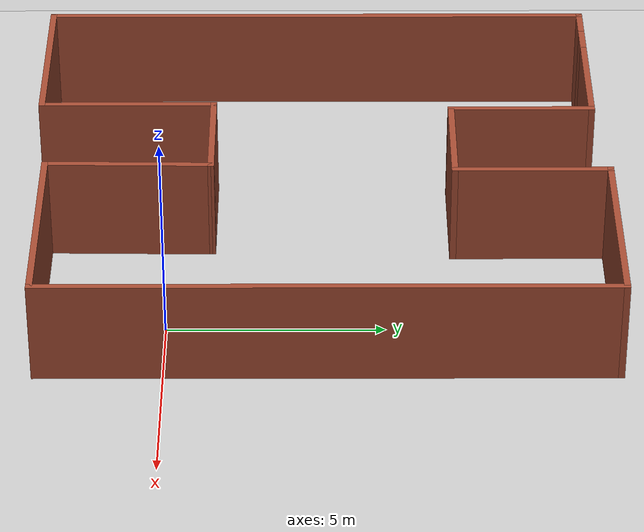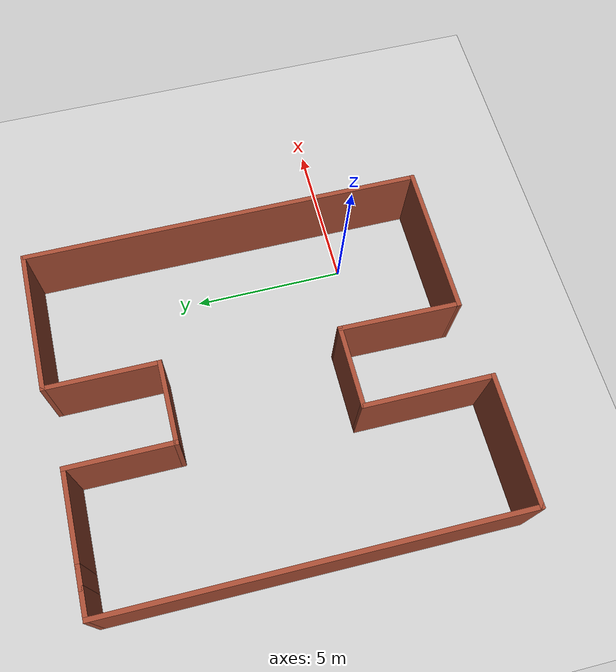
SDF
<sdf version="1.7">
 <world name="default">
  <light name="sun" type="directional">
   <pose>0 0 10 0 -0 0</pose>
   <diffuse>0.8 0.8 0.8 1</diffuse>
   <specular>0.2 0.2 0.2 1</specular>
   <attenuation>
    <range>1000</range>
    <constant>0.9</constant>
    <linear>0.01</linear>
    <quadratic>0.001</quadratic>
   </attenuation>
   <direction>-0.5 0.1 -0.9</direction>
   <spot><inner_angle>0</inner_angle><outer_angle>0</outer_angle><falloff>0</falloff></spot>
  </light>
  <model name="ground_plane">
   <static>1</static>
   <link name="link">
    <collision name="collision">
     <geometry><plane><normal>0 0 1</normal><size>100 100</size></plane></geometry>
     <surface>
      <contact><collide_bitmask>65535</collide_bitmask></contact>
      <friction><ode><mu>100</mu><mu2>50</mu2></ode></friction>
     </surface>
    </collision>
    <visual name="visual">
     <cast_shadows>0</cast_shadows>
     <geometry><plane><normal>0 0 1</normal><size>100 100</size></plane></geometry>
     <material>
      <script><uri>file://media/materials/scripts/gazebo.material</uri><name>Gazebo/Grey</name></script>
     </material>
    </visual>
   </link>
  </model>
  <gravity>0 0 -9.8</gravity>
  <magnetic_field>6e-06 2.3e-05 -4.2e-05</magnetic_field>
  <atmosphere type="adiabatic"/>
  <physics type="ode">
   <max_step_size>0.001</max_step_size>
   <real_time_factor>1</real_time_factor>
   <real_time_update_rate>1000</real_time_update_rate>
  </physics>
  <scene><ambient>0.4 0.4 0.4 1</ambient><background>0.7 0.7 0.7 1</background><shadows>1</shadows></scene>
  <spherical_coordinates>
   <surface_model>EARTH_WGS84</surface_model>
   <latitude_deg>0</latitude_deg>
   <longitude_deg>0</longitude_deg>
   <elevation>0</elevation>
   <heading_deg>0</heading_deg>
  </spherical_coordinates>
  <model name="my_car_world">
   <pose>-4.02 3.565 0 0 -0 0</pose>
   <link name="Wall_10">
    <collision name="Wall_10_Collision">
     <geometry><box><size>3.5 0.15 2.5</size></box></geometry>
     <pose>0 0 1.25 0 -0 0</pose>
    </collision>
    <visual name="Wall_10_Visual">
     <pose>0 0 1.25 0 -0 0</pose>
     <geometry><box><size>3.5 0.15 2.5</size></box></geometry>
     <material>
      <script><uri>file://media/materials/scripts/gazebo.material</uri><name>Gazebo/Bricks</name></script>
      <ambient>1 1 1 1</ambient>
     </material>
     <meta><layer>0</layer></meta>
    </visual>
    <pose>-1.45 4.75 0 0 -0 1.5708</pose>
   </link>
   <link name="Wall_11">
    <collision name="Wall_11_Collision">
     <geometry><box><size>3 0.15 2.5</size></box></geometry>
     <pose>0 0 1.25 0 -0 0</pose>
    </collision>
    <visual name="Wall_11_Visual">
     <pose>0 0 1.25 0 -0 0</pose>
     <geometry><box><size>3 0.15 2.5</size></box></geometry>
     <material>
      <script><uri>file://media/materials/scripts/gazebo.material</uri><name>Gazebo/Bricks</name></script>
      <ambient>1 1 1 1</ambient>
     </material>
     <meta><layer>0</layer></meta>
    </visual>
    <pose>-2.875 6.425 0 0 -0 3.14159</pose>
   </link>
   <link name="Wall_12">
    <collision name="Wall_12_Collision">
     <geometry><box><size>0.75 0.15 2.5</size></box></geometry>
     <pose>0 0 1.25 0 -0 0</pose>
    </collision>
    <visual name="Wall_12_Visual">
     <pose>0 0 1.25 0 -0 0</pose>
     <geometry><box><size>0.75 0.15 2.5</size></box></geometry>
     <material>
      <script><uri>file://media/materials/scripts/gazebo.material</uri><name>Gazebo/Bricks</name></script>
      <ambient>1 1 1 1</ambient>
     </material>
     <meta><layer>0</layer></meta>
    </visual>
    <pose>-4.6 6.425 0 0 -0 3.14159</pose>
   </link>
   <link name="Wall_13">
    <collision name="Wall_13_Collision">
     <geometry><box><size>1 0.15 2.5</size></box></geometry>
     <pose>0 0 1.25 0 -0 0</pose>
    </collision>
    <visual name="Wall_13_Visual">
     <pose>0 0 1.25 0 -0 0</pose>
     <geometry><box><size>1 0.15 2.5</size></box></geometry>
     <material>
      <script><uri>file://media/materials/scripts/gazebo.material</uri><name>Gazebo/Bricks</name></script>
      <ambient>1 1 1 1</ambient>
     </material>
     <meta><layer>0</layer></meta>
    </visual>
    <pose>-5.325 6.425 0 0 -0 3.14159</pose>
   </link>
   <link name="Wall_14">
    <collision name="Wall_14_Collision">
     <geometry><box><size>13.25 0.15 2.5</size></box></geometry>
     <pose>0 0 1.25 0 -0 0</pose>
    </collision>
    <visual name="Wall_14_Visual">
     <pose>0 0 1.25 0 -0 0</pose>
     <geometry><box><size>13.25 0.15 2.5</size></box></geometry>
     <material>
      <script><uri>file://media/materials/scripts/gazebo.material</uri><name>Gazebo/Bricks</name></script>
      <ambient>1 1 1 1</ambient>
     </material>
     <meta><layer>0</layer></meta>
    </visual>
    <pose>-5.75 -0.125 0 0 -0 -1.5708</pose>
   </link>
   <link name="Wall_15">
    <collision name="Wall_15_Collision">
     <geometry><box><size>4.25 0.15 2.5</size></box></geometry>
     <pose>0 0 1.25 0 -0 0</pose>
    </collision>
    <visual name="Wall_15_Visual">
     <pose>0 0 1.25 0 -0 0</pose>
     <geometry><box><size>4.25 0.15 2.5</size></box></geometry>
     <material>
      <script><uri>file://media/materials/scripts/gazebo.material</uri><name>Gazebo/Bricks</name></script>
      <ambient>1 1 1 1</ambient>
     </material>
     <meta><layer>0</layer></meta>
    </visual>
    <pose>-3.7 -6.675 0 0 -0 0</pose>
   </link>
   <link name="Wall_16">
    <collision name="Wall_16_Collision">
     <geometry><box><size>4.25 0.15 2.5</size></box></geometry>
     <pose>0 0 1.25 0 -0 0</pose>
    </collision>
    <visual name="Wall_16_Visual">
     <pose>0 0 1.25 0 -0 0</pose>
     <geometry><box><size>4.25 0.15 2.5</size></box></geometry>
     <material>
      <script><uri>file://media/materials/scripts/gazebo.material</uri><name>Gazebo/Bricks</name></script>
      <ambient>1 1 1 1</ambient>
     </material>
     <meta><layer>0</layer></meta>
    </visual>
    <pose>-1.65 -4.625 0 0 -0 1.5708</pose>
   </link>
   <link name="Wall_17">
    <collision name="Wall_17_Collision">
     <geometry><box><size>2.75 0.15 2.5</size></box></geometry>
     <pose>0 0 1.25 0 -0 0</pose>
    </collision>
    <visual name="Wall_17_Visual">
     <pose>0 0 1.25 0 -0 0</pose>
     <geometry><box><size>2.75 0.15 2.5</size></box></geometry>
     <material>
      <script><uri>file://media/materials/scripts/gazebo.material</uri><name>Gazebo/Bricks</name></script>
      <ambient>1 1 1 1</ambient>
     </material>
     <meta><layer>0</layer></meta>
    </visual>
    <pose>-0.35 -2.575 0 0 -0 0</pose>
   </link>
   <link name="Wall_18">
    <collision name="Wall_18_Collision">
     <geometry><box><size>4.00033 0.15 2.5</size></box></geometry>
     <pose>0 0 1.25 0 -0 0</pose>
    </collision>
    <visual name="Wall_18_Visual">
     <pose>0 0 1.25 0 -0 0</pose>
     <geometry><box><size>4.00033 0.15 2.5</size></box></geometry>
     <material>
      <script><uri>file://media/materials/scripts/gazebo.material</uri><name>Gazebo/Bricks</name></script>
      <ambient>1 1 1 1</ambient>
     </material>
     <meta><layer>0</layer></meta>
    </visual>
    <pose>0.925 -4.5 0 0 -0 -1.58378</pose>
   </link>
   <link name="Wall_3">
    <collision name="Wall_3_Collision">
     <geometry><box><size>5 0.15 2.5</size></box></geometry>
     <pose>0 0 1.25 0 -0 0</pose>
    </collision>
    <visual name="Wall_3_Visual">
     <pose>0 0 1.25 0 -0 0</pose>
     <geometry><box><size>5 0.15 2.5</size></box></geometry>
     <material>
      <script><uri>file://media/materials/scripts/gazebo.material</uri><name>Gazebo/Bricks</name></script>
      <ambient>1 1 1 1</ambient>
     </material>
     <meta><layer>0</layer></meta>
    </visual>
    <pose>3.325 -6.425 0 0 -0 3.14159</pose>
   </link>
   <link name="Wall_6">
    <collision name="Wall_6_Collision">
     <geometry><box><size>13.25 0.15 2.5</size></box></geometry>
     <pose>0 0 1.25 0 -0 0</pose>
    </collision>
    <visual name="Wall_6_Visual">
     <pose>0 0 1.25 0 -0 0</pose>
     <geometry><box><size>13.25 0.15 2.5</size></box></geometry>
     <material>
      <script><uri>file://media/materials/scripts/gazebo.material</uri><name>Gazebo/Bricks</name></script>
      <ambient>1 1 1 1</ambient>
     </material>
     <meta><layer>0</layer></meta>
    </visual>
    <pose>5.75 0.125 0 0 -0 1.5708</pose>
   </link>
   <link name="Wall_7">
    <collision name="Wall_7_Collision">
     <geometry><box><size>4.75 0.15 2.5</size></box></geometry>
     <pose>0 0 1.25 0 -0 0</pose>
    </collision>
    <visual name="Wall_7_Visual">
     <pose>0 0 1.25 0 -0 0</pose>
     <geometry><box><size>4.75 0.15 2.5</size></box></geometry>
     <material>
      <script><uri>file://media/materials/scripts/gazebo.material</uri><name>Gazebo/Bricks</name></script>
      <ambient>1 1 1 1</ambient>
     </material>
     <meta><layer>0</layer></meta>
    </visual>
    <pose>3.45 6.675 0 0 -0 3.14159</pose>
   </link>
   <link name="Wall_8">
    <collision name="Wall_8_Collision">
     <geometry><box><size>3.75 0.15 2.5</size></box></geometry>
     <pose>0 0 1.25 0 -0 0</pose>
    </collision>
    <visual name="Wall_8_Visual">
     <pose>0 0 1.25 0 -0 0</pose>
     <geometry><box><size>3.75 0.15 2.5</size></box></geometry>
     <material>
      <script><uri>file://media/materials/scripts/gazebo.material</uri><name>Gazebo/Bricks</name></script>
      <ambient>1 1 1 1</ambient>
     </material>
     <meta><layer>0</layer></meta>
    </visual>
    <pose>1.15 4.875 0 0 -0 -1.5708</pose>
   </link>
   <link name="Wall_9">
    <collision name="Wall_9_Collision">
     <geometry><box><size>2.75 0.15 2.5</size></box></geometry>
     <pose>0 0 1.25 0 -0 0</pose>
    </collision>
    <visual name="Wall_9_Visual">
     <pose>0 0 1.25 0 -0 0</pose>
     <geometry><box><size>2.75 0.15 2.5</size></box></geometry>
     <material>
      <script><uri>file://media/materials/scripts/gazebo.material</uri><name>Gazebo/Bricks</name></script>
      <ambient>1 1 1 1</ambient>
     </material>
     <meta><layer>0</layer></meta>
    </visual>
    <pose>-0.15 3.075 0 0 -0 3.14159</pose>
   </link>
   <static>1</static>
  </model>
 </world>
</sdf>
